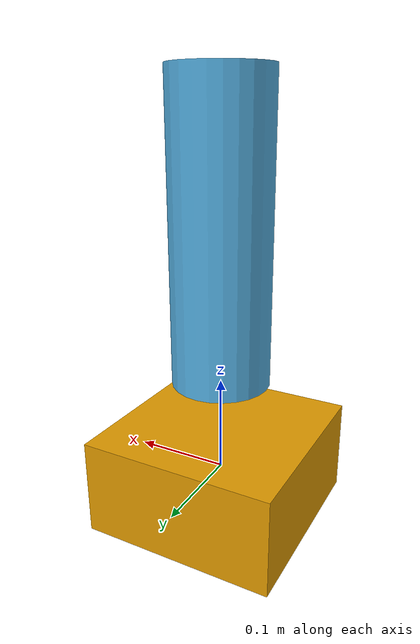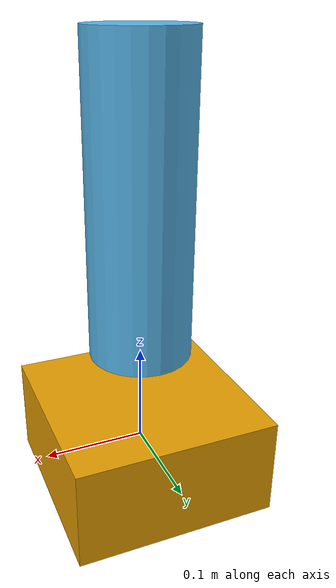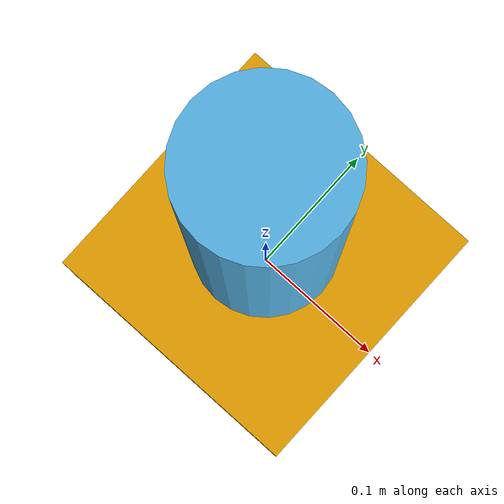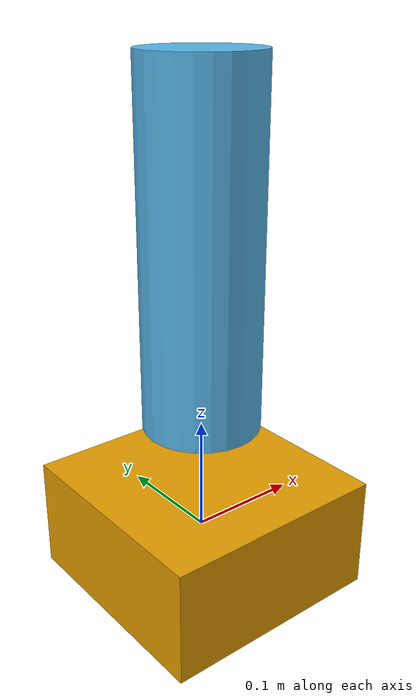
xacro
<?xml version="1.0"?>
<robot name="test_joint" xmlns:xacro="http://www.ros.org/wiki/xacro">

  <link name="base_link">
    <visual>
      <geometry>
        <box size="0.2 0.2 0.1"/>
      </geometry>
    </visual>
    <collision>
      <geometry>
        <box size="0.2 0.2 0.1"/>
      </geometry>
    </collision>
    <inertial>
      <mass value="1.0"/>
      <inertia ixx="0.01" ixy="0.0" ixz="0.0" iyy="0.01" iyz="0.0" izz="0.01"/>
    </inertial>
  </link>

  <link name="joint_link">
    <visual>
      <geometry>
        <cylinder length="0.3" radius="0.05"/>
      </geometry>
      <origin xyz="0 0 0.15" rpy="0 0 0"/>
    </visual>
    <collision>
      <geometry>
        <cylinder length="0.3" radius="0.05"/>
      </geometry>
      <origin xyz="0 0 0.15" rpy="0 0 0"/>
    </collision>
    <inertial>
      <mass value="0.5"/>
      <inertia ixx="0.001" ixy="0.0" ixz="0.0" iyy="0.001" iyz="0.0" izz="0.001"/>
      <origin xyz="0 0 0.15" rpy="0 0 0"/>
    </inertial>
  </link>

  <joint name="right_front_wheel_joint" type="revolute">
    <parent link="base_link"/>
    <child link="joint_link"/>
    <origin xyz="0 0 0.1" rpy="0 0 0"/>
    <axis xyz="0 0 1"/>

    <limit lower="-1.57" upper="1.57" velocity="3.14" effort="10.0"/>

    <dynamics damping="0.1" friction="0.01"/>
  </joint>

  <ros2_control name="RmHardwareSystem" type="system">
    <hardware>
      <plugin>rm2_hw/RmHardwareSystem</plugin>
    </hardware>
    <joint name="right_front_wheel_joint">
      <command_interface name="effort"/>
      <state_interface name="position"/>
      <state_interface name="velocity"/>
      <state_interface name="effort"/>
    </joint>
    <transmission name="test_trans">
      <type>transmission_interface/SimpleTransmission</type>
      <plugin>transmission_interface/SimpleTransmission</plugin>
      <joint name="right_front_wheel_joint" role="actuated">
        <hardwareInterface>rm2_hw/RmHardwareSystem</hardwareInterface>
        <offset>0.0</offset>
      </joint>
      <actuator name="right_front_wheel_motor" role="actuated">
        <mechanicalReduction>1</mechanicalReduction>
      </actuator>
    </transmission>
  </ros2_control>

</robot>
